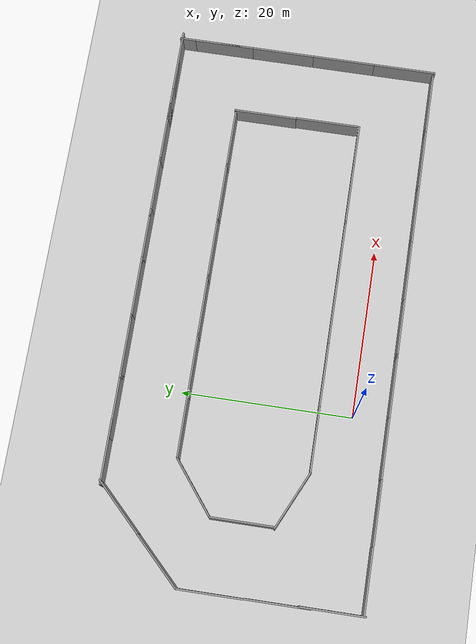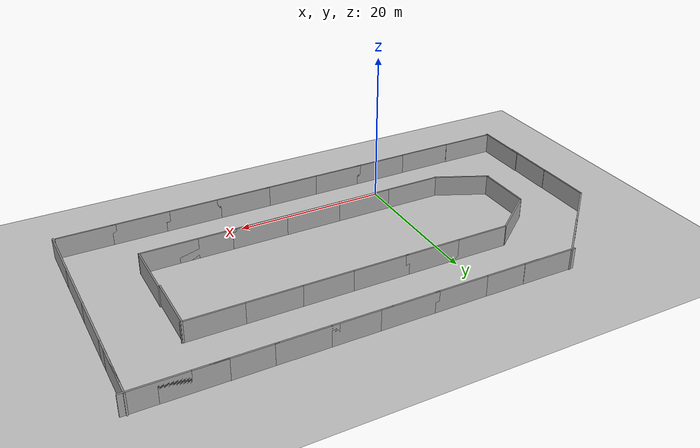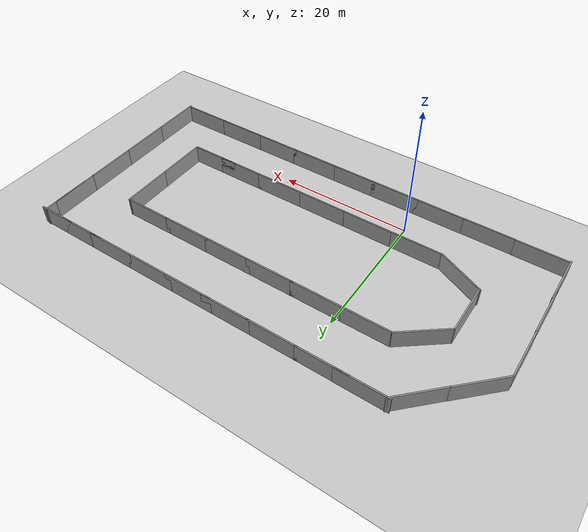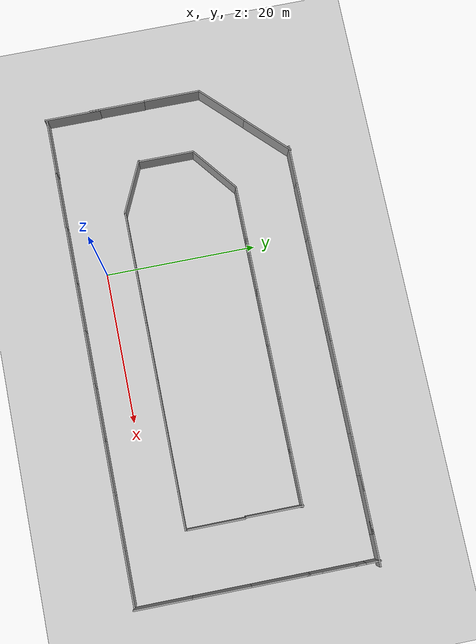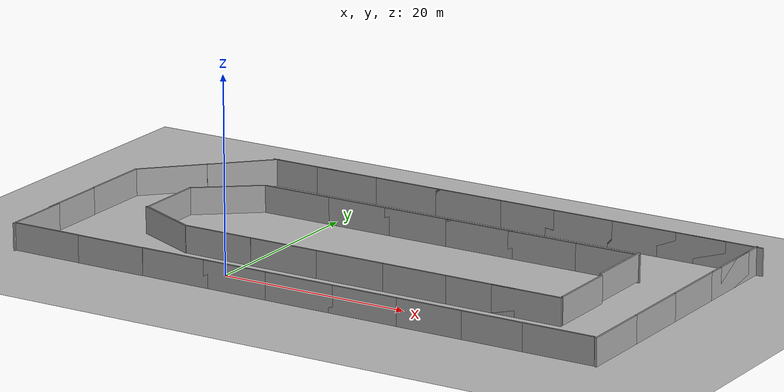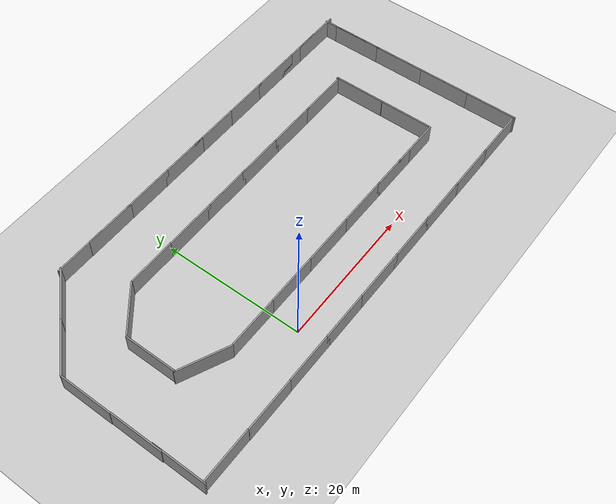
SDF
<sdf version="1.4">
 <world name="default">
  <light name="sun" type="directional">
   <pose>0 0 10 0 -0 0</pose>
   <diffuse>0.8 0.8 0.8 1</diffuse>
   <specular>0.2 0.2 0.2 1</specular>
   <attenuation>
    <range>1000</range>
    <constant>0.9</constant>
    <linear>0.01</linear>
    <quadratic>0.001</quadratic>
   </attenuation>
   <direction>-0.5 0.1 -0.9</direction>
  </light>
  <model name="ground_plane">
   <static>1</static>
   <link name="link">
    <collision name="collision">
     <geometry><plane><normal>0 0 1</normal><size>100 100</size></plane></geometry>
     <surface><friction><ode><mu>100</mu><mu2>50</mu2></ode></friction></surface>
    </collision>
    <visual name="visual">
     <cast_shadows>0</cast_shadows>
     <geometry><plane><normal>0 0 1</normal><size>100 100</size></plane></geometry>
     <material>
      <script><uri>file://media/materials/scripts/gazebo.material</uri><name>Gazebo/Grey</name></script>
     </material>
    </visual>
    <velocity_decay><linear>0</linear><angular>0</angular></velocity_decay>
   </link>
  </model>
  <physics type="ode">
   <max_step_size>0.001</max_step_size>
   <real_time_factor>1</real_time_factor>
   <real_time_update_rate>1000</real_time_update_rate>
   <gravity>0 0 -9.8</gravity>
  </physics>
  <scene><ambient>0.4 0.4 0.4 1</ambient><background>0.7 0.7 0.7 1</background><shadows>1</shadows></scene>
  <spherical_coordinates>
   <surface_model>EARTH_WGS84</surface_model>
   <latitude_deg>0</latitude_deg>
   <longitude_deg>0</longitude_deg>
   <elevation>0</elevation>
   <heading_deg>0</heading_deg>
  </spherical_coordinates>
  <model name="grey_wall_12">
   <static>1</static>
   <link name="link">
    <pose>0 0 1.4 0 -0 0</pose>
    <collision name="collision"><geometry><box><size>7.5 0.2 2.8</size></box></geometry></collision>
    <visual name="visual">
     <cast_shadows>0</cast_shadows>
     <geometry><box><size>7.5 0.2 2.8</size></box></geometry>
     <material>
      <script>
       <uri>model://grey_wall/materials/scripts</uri>
       <uri>model://grey_wall/materials/textures</uri>
       <name>vrc/grey_wall</name>
      </script>
     </material>
    </visual>
    <velocity_decay><linear>0</linear><angular>0</angular></velocity_decay>
   </link>
   <pose>4.07472 3.99162 0 0 -0 0</pose>
  </model>
  <model name="grey_wall_14">
   <static>1</static>
   <link name="link">
    <pose>0 0 1.4 0 -0 0</pose>
    <collision name="collision"><geometry><box><size>7.5 0.2 2.8</size></box></geometry></collision>
    <visual name="visual">
     <cast_shadows>0</cast_shadows>
     <geometry><box><size>7.5 0.2 2.8</size></box></geometry>
     <material>
      <script>
       <uri>model://grey_wall/materials/scripts</uri>
       <uri>model://grey_wall/materials/textures</uri>
       <name>vrc/grey_wall</name>
      </script>
     </material>
    </visual>
    <velocity_decay><linear>0</linear><angular>0</angular></velocity_decay>
   </link>
   <pose>11.5445 4 0 0 -0 0</pose>
  </model>
  <model name="grey_wall_15">
   <static>1</static>
   <link name="link">
    <pose>0 0 1.4 0 -0 0</pose>
    <collision name="collision"><geometry><box><size>7.5 0.2 2.8</size></box></geometry></collision>
    <visual name="visual">
     <cast_shadows>0</cast_shadows>
     <geometry><box><size>7.5 0.2 2.8</size></box></geometry>
     <material>
      <script>
       <uri>model://grey_wall/materials/scripts</uri>
       <uri>model://grey_wall/materials/textures</uri>
       <name>vrc/grey_wall</name>
      </script>
     </material>
    </visual>
    <velocity_decay><linear>0</linear><angular>0</angular></velocity_decay>
   </link>
   <pose>4 -4 0 0 -0 0</pose>
  </model>
  <model name="grey_wall_16">
   <static>1</static>
   <link name="link">
    <pose>0 0 1.4 0 -0 0</pose>
    <collision name="collision"><geometry><box><size>7.5 0.2 2.8</size></box></geometry></collision>
    <visual name="visual">
     <cast_shadows>0</cast_shadows>
     <geometry><box><size>7.5 0.2 2.8</size></box></geometry>
     <material>
      <script>
       <uri>model://grey_wall/materials/scripts</uri>
       <uri>model://grey_wall/materials/textures</uri>
       <name>vrc/grey_wall</name>
      </script>
     </material>
    </visual>
    <velocity_decay><linear>0</linear><angular>0</angular></velocity_decay>
   </link>
   <pose>11 -4 0 0 -0 0</pose>
  </model>
  <model name="grey_wall_17">
   <static>1</static>
   <link name="link">
    <pose>0 0 1.4 0 -0 0</pose>
    <collision name="collision"><geometry><box><size>7.5 0.2 2.8</size></box></geometry></collision>
    <visual name="visual">
     <cast_shadows>0</cast_shadows>
     <geometry><box><size>7.5 0.2 2.8</size></box></geometry>
     <material>
      <script>
       <uri>model://grey_wall/materials/scripts</uri>
       <uri>model://grey_wall/materials/textures</uri>
       <name>vrc/grey_wall</name>
      </script>
     </material>
    </visual>
    <velocity_decay><linear>0</linear><angular>0</angular></velocity_decay>
   </link>
   <pose>18 -4 0 0 -0 0</pose>
  </model>
  <model name="grey_wall_18">
   <static>1</static>
   <link name="link">
    <pose>0 0 1.4 0 -0 0</pose>
    <collision name="collision"><geometry><box><size>7.5 0.2 2.8</size></box></geometry></collision>
    <visual name="visual">
     <cast_shadows>0</cast_shadows>
     <geometry><box><size>7.5 0.2 2.8</size></box></geometry>
     <material>
      <script>
       <uri>model://grey_wall/materials/scripts</uri>
       <uri>model://grey_wall/materials/textures</uri>
       <name>vrc/grey_wall</name>
      </script>
     </material>
    </visual>
    <velocity_decay><linear>0</linear><angular>0</angular></velocity_decay>
   </link>
   <pose>19 4 0 0 -0 0</pose>
  </model>
  <model name="grey_wall_19">
   <static>1</static>
   <link name="link">
    <pose>0 0 1.4 0 -0 0</pose>
    <collision name="collision"><geometry><box><size>7.5 0.2 2.8</size></box></geometry></collision>
    <visual name="visual">
     <cast_shadows>0</cast_shadows>
     <geometry><box><size>7.5 0.2 2.8</size></box></geometry>
     <material>
      <script>
       <uri>model://grey_wall/materials/scripts</uri>
       <uri>model://grey_wall/materials/textures</uri>
       <name>vrc/grey_wall</name>
      </script>
     </material>
    </visual>
    <velocity_decay><linear>0</linear><angular>0</angular></velocity_decay>
   </link>
   <pose>25 -4 0 0 -0 0</pose>
  </model>
  <model name="grey_wall_20">
   <static>1</static>
   <link name="link">
    <pose>0 0 1.4 0 -0 0</pose>
    <collision name="collision"><geometry><box><size>7.5 0.2 2.8</size></box></geometry></collision>
    <visual name="visual">
     <cast_shadows>0</cast_shadows>
     <geometry><box><size>7.5 0.2 2.8</size></box></geometry>
     <material>
      <script>
       <uri>model://grey_wall/materials/scripts</uri>
       <uri>model://grey_wall/materials/textures</uri>
       <name>vrc/grey_wall</name>
      </script>
     </material>
    </visual>
    <velocity_decay><linear>0</linear><angular>0</angular></velocity_decay>
   </link>
   <pose>32 -4 0 0 -0 0</pose>
  </model>
  <model name="grey_wall_21">
   <static>1</static>
   <link name="link">
    <pose>0 0 1.4 0 -0 0</pose>
    <collision name="collision"><geometry><box><size>7.5 0.2 2.8</size></box></geometry></collision>
    <visual name="visual">
     <cast_shadows>0</cast_shadows>
     <geometry><box><size>7.5 0.2 2.8</size></box></geometry>
     <material>
      <script>
       <uri>model://grey_wall/materials/scripts</uri>
       <uri>model://grey_wall/materials/textures</uri>
       <name>vrc/grey_wall</name>
      </script>
     </material>
    </visual>
    <velocity_decay><linear>0</linear><angular>0</angular></velocity_decay>
   </link>
   <pose>39 -4 0 0 -0 0</pose>
  </model>
  <model name="grey_wall_22">
   <static>1</static>
   <link name="link">
    <pose>0 0 1.4 0 -0 0</pose>
    <collision name="collision"><geometry><box><size>7.5 0.2 2.8</size></box></geometry></collision>
    <visual name="visual">
     <cast_shadows>0</cast_shadows>
     <geometry><box><size>7.5 0.2 2.8</size></box></geometry>
     <material>
      <script>
       <uri>model://grey_wall/materials/scripts</uri>
       <uri>model://grey_wall/materials/textures</uri>
       <name>vrc/grey_wall</name>
      </script>
     </material>
    </visual>
    <velocity_decay><linear>0</linear><angular>0</angular></velocity_decay>
   </link>
   <pose>43 -0.492868 0 0 -0 1.5708</pose>
  </model>
  <model name="grey_wall_23">
   <static>1</static>
   <link name="link">
    <pose>0 0 1.4 0 -0 0</pose>
    <collision name="collision"><geometry><box><size>7.5 0.2 2.8</size></box></geometry></collision>
    <visual name="visual">
     <cast_shadows>0</cast_shadows>
     <geometry><box><size>7.5 0.2 2.8</size></box></geometry>
     <material>
      <script>
       <uri>model://grey_wall/materials/scripts</uri>
       <uri>model://grey_wall/materials/textures</uri>
       <name>vrc/grey_wall</name>
      </script>
     </material>
    </visual>
    <velocity_decay><linear>0</linear><angular>0</angular></velocity_decay>
   </link>
   <pose>26 4 0 0 -0 0</pose>
  </model>
  <model name="grey_wall_24">
   <static>1</static>
   <link name="link">
    <pose>0 0 1.4 0 -0 0</pose>
    <collision name="collision"><geometry><box><size>7.5 0.2 2.8</size></box></geometry></collision>
    <visual name="visual">
     <cast_shadows>0</cast_shadows>
     <geometry><box><size>7.5 0.2 2.8</size></box></geometry>
     <material>
      <script>
       <uri>model://grey_wall/materials/scripts</uri>
       <uri>model://grey_wall/materials/textures</uri>
       <name>vrc/grey_wall</name>
      </script>
     </material>
    </visual>
    <velocity_decay><linear>0</linear><angular>0</angular></velocity_decay>
   </link>
   <pose>31 4 0 0 -0 0</pose>
  </model>
  <model name="grey_wall_25">
   <static>1</static>
   <link name="link">
    <pose>0 0 1.4 0 -0 0</pose>
    <collision name="collision"><geometry><box><size>7.5 0.2 2.8</size></box></geometry></collision>
    <visual name="visual">
     <cast_shadows>0</cast_shadows>
     <geometry><box><size>7.5 0.2 2.8</size></box></geometry>
     <material>
      <script>
       <uri>model://grey_wall/materials/scripts</uri>
       <uri>model://grey_wall/materials/textures</uri>
       <name>vrc/grey_wall</name>
      </script>
     </material>
    </visual>
    <velocity_decay><linear>0</linear><angular>0</angular></velocity_decay>
   </link>
   <pose>43 7 0 0 -0 1.5708</pose>
  </model>
  <model name="grey_wall_26">
   <static>1</static>
   <link name="link">
    <pose>0 0 1.4 0 -0 0</pose>
    <collision name="collision"><geometry><box><size>7.5 0.2 2.8</size></box></geometry></collision>
    <visual name="visual">
     <cast_shadows>0</cast_shadows>
     <geometry><box><size>7.5 0.2 2.8</size></box></geometry>
     <material>
      <script>
       <uri>model://grey_wall/materials/scripts</uri>
       <uri>model://grey_wall/materials/textures</uri>
       <name>vrc/grey_wall</name>
      </script>
     </material>
    </visual>
    <velocity_decay><linear>0</linear><angular>0</angular></velocity_decay>
   </link>
   <pose>34.5478 15.4321 0.15855 0 -0 1.5708</pose>
  </model>
  <model name="grey_wall_27">
   <static>1</static>
   <link name="link">
    <pose>0 0 1.4 0 -0 0</pose>
    <collision name="collision"><geometry><box><size>7.5 0.2 2.8</size></box></geometry></collision>
    <visual name="visual">
     <cast_shadows>0</cast_shadows>
     <geometry><box><size>7.5 0.2 2.8</size></box></geometry>
     <material>
      <script>
       <uri>model://grey_wall/materials/scripts</uri>
       <uri>model://grey_wall/materials/textures</uri>
       <name>vrc/grey_wall</name>
      </script>
     </material>
    </visual>
    <velocity_decay><linear>0</linear><angular>0</angular></velocity_decay>
   </link>
   <pose>43 14.4616 0 0 -0 1.5708</pose>
  </model>
  <model name="grey_wall_28">
   <static>1</static>
   <link name="link">
    <pose>0 0 1.4 0 -0 0</pose>
    <collision name="collision"><geometry><box><size>7.5 0.2 2.8</size></box></geometry></collision>
    <visual name="visual">
     <cast_shadows>0</cast_shadows>
     <geometry><box><size>7.5 0.2 2.8</size></box></geometry>
     <material>
      <script>
       <uri>model://grey_wall/materials/scripts</uri>
       <uri>model://grey_wall/materials/textures</uri>
       <name>vrc/grey_wall</name>
      </script>
     </material>
    </visual>
    <velocity_decay><linear>0</linear><angular>0</angular></velocity_decay>
   </link>
   <pose>34.6728 7.95262 0.0202 0 -0 1.5708</pose>
  </model>
  <model name="grey_wall_30">
   <static>1</static>
   <link name="link">
    <pose>0 0 1.4 0 -0 0</pose>
    <collision name="collision"><geometry><box><size>7.5 0.2 2.8</size></box></geometry></collision>
    <visual name="visual">
     <cast_shadows>0</cast_shadows>
     <geometry><box><size>7.5 0.2 2.8</size></box></geometry>
     <material>
      <script>
       <uri>model://grey_wall/materials/scripts</uri>
       <uri>model://grey_wall/materials/textures</uri>
       <name>vrc/grey_wall</name>
      </script>
     </material>
    </visual>
    <velocity_decay><linear>0</linear><angular>0</angular></velocity_decay>
   </link>
   <pose>43 21.5815 0 0 -0 1.5708</pose>
  </model>
  <model name="grey_wall_31">
   <static>1</static>
   <link name="link">
    <pose>0 0 1.4 0 -0 0</pose>
    <collision name="collision"><geometry><box><size>7.5 0.2 2.8</size></box></geometry></collision>
    <visual name="visual">
     <cast_shadows>0</cast_shadows>
     <geometry><box><size>7.5 0.2 2.8</size></box></geometry>
     <material>
      <script>
       <uri>model://grey_wall/materials/scripts</uri>
       <uri>model://grey_wall/materials/textures</uri>
       <name>vrc/grey_wall</name>
      </script>
     </material>
    </visual>
    <velocity_decay><linear>0</linear><angular>0</angular></velocity_decay>
   </link>
   <pose>31 19 0 0 -0 0</pose>
  </model>
  <model name="grey_wall_32">
   <static>1</static>
   <link name="link">
    <pose>0 0 1.4 0 -0 0</pose>
    <collision name="collision"><geometry><box><size>7.5 0.2 2.8</size></box></geometry></collision>
    <visual name="visual">
     <cast_shadows>0</cast_shadows>
     <geometry><box><size>7.5 0.2 2.8</size></box></geometry>
     <material>
      <script>
       <uri>model://grey_wall/materials/scripts</uri>
       <uri>model://grey_wall/materials/textures</uri>
       <name>vrc/grey_wall</name>
      </script>
     </material>
    </visual>
    <velocity_decay><linear>0</linear><angular>0</angular></velocity_decay>
   </link>
   <pose>24 19 0 0 -0 0</pose>
  </model>
  <model name="grey_wall_33">
   <static>1</static>
   <link name="link">
    <pose>0 0 1.4 0 -0 0</pose>
    <collision name="collision"><geometry><box><size>7.5 0.2 2.8</size></box></geometry></collision>
    <visual name="visual">
     <cast_shadows>0</cast_shadows>
     <geometry><box><size>7.5 0.2 2.8</size></box></geometry>
     <material>
      <script>
       <uri>model://grey_wall/materials/scripts</uri>
       <uri>model://grey_wall/materials/textures</uri>
       <name>vrc/grey_wall</name>
      </script>
     </material>
    </visual>
    <velocity_decay><linear>0</linear><angular>0</angular></velocity_decay>
   </link>
   <pose>17 19 0 0 -0 0</pose>
  </model>
  <model name="grey_wall_34">
   <static>1</static>
   <link name="link">
    <pose>0 0 1.4 0 -0 0</pose>
    <collision name="collision"><geometry><box><size>7.5 0.2 2.8</size></box></geometry></collision>
    <visual name="visual">
     <cast_shadows>0</cast_shadows>
     <geometry><box><size>7.5 0.2 2.8</size></box></geometry>
     <material>
      <script>
       <uri>model://grey_wall/materials/scripts</uri>
       <uri>model://grey_wall/materials/textures</uri>
       <name>vrc/grey_wall</name>
      </script>
     </material>
    </visual>
    <velocity_decay><linear>0</linear><angular>0</angular></velocity_decay>
   </link>
   <pose>10 19 0 0 -0 0</pose>
  </model>
  <model name="grey_wall_36">
   <static>1</static>
   <link name="link">
    <pose>0 0 1.4 0 -0 0</pose>
    <collision name="collision"><geometry><box><size>7.5 0.2 2.8</size></box></geometry></collision>
    <visual name="visual">
     <cast_shadows>0</cast_shadows>
     <geometry><box><size>7.5 0.2 2.8</size></box></geometry>
     <material>
      <script>
       <uri>model://grey_wall/materials/scripts</uri>
       <uri>model://grey_wall/materials/textures</uri>
       <name>vrc/grey_wall</name>
      </script>
     </material>
    </visual>
    <velocity_decay><linear>0</linear><angular>0</angular></velocity_decay>
   </link>
   <pose>3 19 0 0 -0 0</pose>
  </model>
  <model name="grey_wall_39">
   <static>1</static>
   <link name="link">
    <pose>0 0 1.4 0 -0 0</pose>
    <collision name="collision"><geometry><box><size>7.5 0.2 2.8</size></box></geometry></collision>
    <visual name="visual">
     <cast_shadows>0</cast_shadows>
     <geometry><box><size>7.5 0.2 2.8</size></box></geometry>
     <material>
      <script>
       <uri>model://grey_wall/materials/scripts</uri>
       <uri>model://grey_wall/materials/textures</uri>
       <name>vrc/grey_wall</name>
      </script>
     </material>
    </visual>
    <velocity_decay><linear>0</linear><angular>0</angular></velocity_decay>
   </link>
   <pose>-3 27 0 0 -0 0</pose>
  </model>
  <model name="grey_wall_40">
   <static>1</static>
   <link name="link">
    <pose>0 0 1.4 0 -0 0</pose>
    <collision name="collision"><geometry><box><size>7.5 0.2 2.8</size></box></geometry></collision>
    <visual name="visual">
     <cast_shadows>0</cast_shadows>
     <geometry><box><size>7.5 0.2 2.8</size></box></geometry>
     <material>
      <script>
       <uri>model://grey_wall/materials/scripts</uri>
       <uri>model://grey_wall/materials/textures</uri>
       <name>vrc/grey_wall</name>
      </script>
     </material>
    </visual>
    <velocity_decay><linear>0</linear><angular>0</angular></velocity_decay>
   </link>
   <pose>4 27 0 0 -0 0</pose>
  </model>
  <model name="grey_wall_41">
   <static>1</static>
   <link name="link">
    <pose>0 0 1.4 0 -0 0</pose>
    <collision name="collision"><geometry><box><size>7.5 0.2 2.8</size></box></geometry></collision>
    <visual name="visual">
     <cast_shadows>0</cast_shadows>
     <geometry><box><size>7.5 0.2 2.8</size></box></geometry>
     <material>
      <script>
       <uri>model://grey_wall/materials/scripts</uri>
       <uri>model://grey_wall/materials/textures</uri>
       <name>vrc/grey_wall</name>
      </script>
     </material>
    </visual>
    <velocity_decay><linear>0</linear><angular>0</angular></velocity_decay>
   </link>
   <pose>11 27 0 0 -0 0</pose>
  </model>
  <model name="grey_wall_42">
   <static>1</static>
   <link name="link">
    <pose>0 0 1.4 0 -0 0</pose>
    <collision name="collision"><geometry><box><size>7.5 0.2 2.8</size></box></geometry></collision>
    <visual name="visual">
     <cast_shadows>0</cast_shadows>
     <geometry><box><size>7.5 0.2 2.8</size></box></geometry>
     <material>
      <script>
       <uri>model://grey_wall/materials/scripts</uri>
       <uri>model://grey_wall/materials/textures</uri>
       <name>vrc/grey_wall</name>
      </script>
     </material>
    </visual>
    <velocity_decay><linear>0</linear><angular>0</angular></velocity_decay>
   </link>
   <pose>17 27 0 0 -0 0</pose>
  </model>
  <model name="grey_wall_43">
   <static>1</static>
   <link name="link">
    <pose>0 0 1.4 0 -0 0</pose>
    <collision name="collision"><geometry><box><size>7.5 0.2 2.8</size></box></geometry></collision>
    <visual name="visual">
     <cast_shadows>0</cast_shadows>
     <geometry><box><size>7.5 0.2 2.8</size></box></geometry>
     <material>
      <script>
       <uri>model://grey_wall/materials/scripts</uri>
       <uri>model://grey_wall/materials/textures</uri>
       <name>vrc/grey_wall</name>
      </script>
     </material>
    </visual>
    <velocity_decay><linear>0</linear><angular>0</angular></velocity_decay>
   </link>
   <pose>23.5405 27 0 0 -0 0</pose>
  </model>
  <model name="grey_wall_44">
   <static>1</static>
   <link name="link">
    <pose>0 0 1.4 0 -0 0</pose>
    <collision name="collision"><geometry><box><size>7.5 0.2 2.8</size></box></geometry></collision>
    <visual name="visual">
     <cast_shadows>0</cast_shadows>
     <geometry><box><size>7.5 0.2 2.8</size></box></geometry>
     <material>
      <script>
       <uri>model://grey_wall/materials/scripts</uri>
       <uri>model://grey_wall/materials/textures</uri>
       <name>vrc/grey_wall</name>
      </script>
     </material>
    </visual>
    <velocity_decay><linear>0</linear><angular>0</angular></velocity_decay>
   </link>
   <pose>30.5521 27 0 0 -0 0</pose>
  </model>
  <model name="grey_wall_45">
   <static>1</static>
   <link name="link">
    <pose>0 0 1.4 0 -0 0</pose>
    <collision name="collision"><geometry><box><size>7.5 0.2 2.8</size></box></geometry></collision>
    <visual name="visual">
     <cast_shadows>0</cast_shadows>
     <geometry><box><size>7.5 0.2 2.8</size></box></geometry>
     <material>
      <script>
       <uri>model://grey_wall/materials/scripts</uri>
       <uri>model://grey_wall/materials/textures</uri>
       <name>vrc/grey_wall</name>
      </script>
     </material>
    </visual>
    <velocity_decay><linear>0</linear><angular>0</angular></velocity_decay>
   </link>
   <pose>36 27 0 0 -0 0</pose>
  </model>
  <model name="grey_wall_46">
   <static>1</static>
   <link name="link">
    <pose>0 0 1.4 0 -0 0</pose>
    <collision name="collision"><geometry><box><size>7.5 0.2 2.8</size></box></geometry></collision>
    <visual name="visual">
     <cast_shadows>0</cast_shadows>
     <geometry><box><size>7.5 0.2 2.8</size></box></geometry>
     <material>
      <script>
       <uri>model://grey_wall/materials/scripts</uri>
       <uri>model://grey_wall/materials/textures</uri>
       <name>vrc/grey_wall</name>
      </script>
     </material>
    </visual>
    <velocity_decay><linear>0</linear><angular>0</angular></velocity_decay>
   </link>
   <pose>40 27 0 0 -0 0</pose>
  </model>
  <model name="grey_wall_47">
   <static>1</static>
   <link name="link">
    <pose>0 0 1.4 0 -0 0</pose>
    <collision name="collision"><geometry><box><size>7.5 0.2 2.8</size></box></geometry></collision>
    <visual name="visual">
     <cast_shadows>0</cast_shadows>
     <geometry><box><size>7.5 0.2 2.8</size></box></geometry>
     <material>
      <script>
       <uri>model://grey_wall/materials/scripts</uri>
       <uri>model://grey_wall/materials/textures</uri>
       <name>vrc/grey_wall</name>
      </script>
     </material>
    </visual>
    <velocity_decay><linear>0</linear><angular>0</angular></velocity_decay>
   </link>
   <pose>43 23.4999 0 0 -0 1.5708</pose>
  </model>
  <model name="grey_wall">
   <static>1</static>
   <link name="link">
    <pose>0 0 1.4 0 -0 0</pose>
    <collision name="collision"><geometry><box><size>7.5 0.2 2.8</size></box></geometry></collision>
    <visual name="visual">
     <cast_shadows>0</cast_shadows>
     <geometry><box><size>7.5 0.2 2.8</size></box></geometry>
     <material>
      <script>
       <uri>model://grey_wall/materials/scripts</uri>
       <uri>model://grey_wall/materials/textures</uri>
       <name>vrc/grey_wall</name>
      </script>
     </material>
    </visual>
    <velocity_decay><linear>0</linear><angular>0</angular></velocity_decay>
   </link>
   <pose>-3.39912 3.9775 0 0 -0 0</pose>
  </model>
  <model name="grey_wall_0">
   <static>1</static>
   <link name="link">
    <pose>0 0 1.4 0 -0 0</pose>
    <collision name="collision"><geometry><box><size>7.5 0.2 2.8</size></box></geometry></collision>
    <visual name="visual">
     <cast_shadows>0</cast_shadows>
     <geometry><box><size>7.5 0.2 2.8</size></box></geometry>
     <material>
      <script>
       <uri>model://grey_wall/materials/scripts</uri>
       <uri>model://grey_wall/materials/textures</uri>
       <name>vrc/grey_wall</name>
      </script>
     </material>
    </visual>
    <velocity_decay><linear>0</linear><angular>0</angular></velocity_decay>
   </link>
   <pose>-4 19 0 0 -0 0</pose>
  </model>
  <model name="grey_wall_1">
   <static>1</static>
   <link name="link">
    <pose>0 0 1.4 0 -0 0</pose>
    <collision name="collision"><geometry><box><size>7.5 0.2 2.8</size></box></geometry></collision>
    <visual name="visual">
     <cast_shadows>0</cast_shadows>
     <geometry><box><size>7.5 0.2 2.8</size></box></geometry>
     <material>
      <script>
       <uri>model://grey_wall/materials/scripts</uri>
       <uri>model://grey_wall/materials/textures</uri>
       <name>vrc/grey_wall</name>
      </script>
     </material>
    </visual>
    <velocity_decay><linear>0</linear><angular>0</angular></velocity_decay>
   </link>
   <pose>-10.7404 16.7141 0 0 -0 0.664552</pose>
  </model>
  <model name="grey_wall_2">
   <static>1</static>
   <link name="link">
    <pose>0 0 1.4 0 -0 0</pose>
    <collision name="collision"><geometry><box><size>7.5 0.2 2.8</size></box></geometry></collision>
    <visual name="visual">
     <cast_shadows>0</cast_shadows>
     <geometry><box><size>7.5 0.2 2.8</size></box></geometry>
     <material>
      <script>
       <uri>model://grey_wall/materials/scripts</uri>
       <uri>model://grey_wall/materials/textures</uri>
       <name>vrc/grey_wall</name>
      </script>
     </material>
    </visual>
    <velocity_decay><linear>0</linear><angular>0</angular></velocity_decay>
   </link>
   <pose>-10.5355 5.48944 0 0 0 -0.433589</pose>
  </model>
  <model name="grey_wall_3">
   <static>1</static>
   <link name="link">
    <pose>0 0 1.4 0 -0 0</pose>
    <collision name="collision"><geometry><box><size>7.5 0.2 2.8</size></box></geometry></collision>
    <visual name="visual">
     <cast_shadows>0</cast_shadows>
     <geometry><box><size>7.5 0.2 2.8</size></box></geometry>
     <material>
      <script>
       <uri>model://grey_wall/materials/scripts</uri>
       <uri>model://grey_wall/materials/textures</uri>
       <name>vrc/grey_wall</name>
      </script>
     </material>
    </visual>
    <velocity_decay><linear>0</linear><angular>0</angular></velocity_decay>
   </link>
   <pose>-13.7312 10.6753 0 0 -0 1.5708</pose>
  </model>
  <model name="grey_wall_4">
   <static>1</static>
   <link name="link">
    <pose>0 0 1.4 0 -0 0</pose>
    <collision name="collision"><geometry><box><size>7.5 0.2 2.8</size></box></geometry></collision>
    <visual name="visual">
     <cast_shadows>0</cast_shadows>
     <geometry><box><size>7.5 0.2 2.8</size></box></geometry>
     <material>
      <script>
       <uri>model://grey_wall/materials/scripts</uri>
       <uri>model://grey_wall/materials/textures</uri>
       <name>vrc/grey_wall</name>
      </script>
     </material>
    </visual>
    <velocity_decay><linear>0</linear><angular>0</angular></velocity_decay>
   </link>
   <pose>-14.0909 24.5631 0 0 -0 0.785398</pose>
  </model>
  <model name="grey_wall_5">
   <static>1</static>
   <link name="link">
    <pose>0 0 1.4 0 -0 0</pose>
    <collision name="collision"><geometry><box><size>7.5 0.2 2.8</size></box></geometry></collision>
    <visual name="visual">
     <cast_shadows>0</cast_shadows>
     <geometry><box><size>7.5 0.2 2.8</size></box></geometry>
     <material>
      <script>
       <uri>model://grey_wall/materials/scripts</uri>
       <uri>model://grey_wall/materials/textures</uri>
       <name>vrc/grey_wall</name>
      </script>
     </material>
    </visual>
    <velocity_decay><linear>0</linear><angular>0</angular></velocity_decay>
   </link>
   <pose>-3 -4 0 0 -0 0</pose>
  </model>
  <model name="grey_wall_7">
   <static>1</static>
   <link name="link">
    <pose>0 0 1.4 0 -0 0</pose>
    <collision name="collision"><geometry><box><size>7.5 0.2 2.8</size></box></geometry></collision>
    <visual name="visual">
     <cast_shadows>0</cast_shadows>
     <geometry><box><size>7.5 0.2 2.8</size></box></geometry>
     <material>
      <script>
       <uri>model://grey_wall/materials/scripts</uri>
       <uri>model://grey_wall/materials/textures</uri>
       <name>vrc/grey_wall</name>
      </script>
     </material>
    </visual>
    <velocity_decay><linear>0</linear><angular>0</angular></velocity_decay>
   </link>
   <pose>-8.3043 27.0305 0 0 -0 0</pose>
  </model>
  <model name="grey_wall_8">
   <static>1</static>
   <link name="link">
    <pose>0 0 1.4 0 -0 0</pose>
    <collision name="collision"><geometry><box><size>7.5 0.2 2.8</size></box></geometry></collision>
    <visual name="visual">
     <cast_shadows>0</cast_shadows>
     <geometry><box><size>7.5 0.2 2.8</size></box></geometry>
     <material>
      <script>
       <uri>model://grey_wall/materials/scripts</uri>
       <uri>model://grey_wall/materials/textures</uri>
       <name>vrc/grey_wall</name>
      </script>
     </material>
    </visual>
    <velocity_decay><linear>0</linear><angular>0</angular></velocity_decay>
   </link>
   <pose>-19.2828 19.4039 0 0 -0 0.785398</pose>
  </model>
  <model name="grey_wall_9">
   <static>1</static>
   <link name="link">
    <pose>0 0 1.4 0 -0 0</pose>
    <collision name="collision"><geometry><box><size>7.5 0.2 2.8</size></box></geometry></collision>
    <visual name="visual">
     <cast_shadows>0</cast_shadows>
     <geometry><box><size>7.5 0.2 2.8</size></box></geometry>
     <material>
      <script>
       <uri>model://grey_wall/materials/scripts</uri>
       <uri>model://grey_wall/materials/textures</uri>
       <name>vrc/grey_wall</name>
      </script>
     </material>
    </visual>
    <velocity_decay><linear>0</linear><angular>0</angular></velocity_decay>
   </link>
   <pose>-10.4941 -4.03555 0 0 -0 0</pose>
  </model>
  <model name="grey_wall_10">
   <static>1</static>
   <link name="link">
    <pose>0 0 1.4 0 -0 0</pose>
    <collision name="collision"><geometry><box><size>7.5 0.2 2.8</size></box></geometry></collision>
    <visual name="visual">
     <cast_shadows>0</cast_shadows>
     <geometry><box><size>7.5 0.2 2.8</size></box></geometry>
     <material>
      <script>
       <uri>model://grey_wall/materials/scripts</uri>
       <uri>model://grey_wall/materials/textures</uri>
       <name>vrc/grey_wall</name>
      </script>
     </material>
    </visual>
    <velocity_decay><linear>0</linear><angular>0</angular></velocity_decay>
   </link>
   <pose>-18 -4 0 0 -0 0</pose>
  </model>
  <model name="grey_wall_11">
   <static>1</static>
   <link name="link">
    <pose>0 0 1.4 0 -0 0</pose>
    <collision name="collision"><geometry><box><size>7.5 0.2 2.8</size></box></geometry></collision>
    <visual name="visual">
     <cast_shadows>0</cast_shadows>
     <geometry><box><size>7.5 0.2 2.8</size></box></geometry>
     <material>
      <script>
       <uri>model://grey_wall/materials/scripts</uri>
       <uri>model://grey_wall/materials/textures</uri>
       <name>vrc/grey_wall</name>
      </script>
     </material>
    </visual>
    <velocity_decay><linear>0</linear><angular>0</angular></velocity_decay>
   </link>
   <pose>-21.9137 13.0108 0 0 -0 1.5708</pose>
  </model>
  <model name="grey_wall_13">
   <static>1</static>
   <link name="link">
    <pose>0 0 1.4 0 -0 0</pose>
    <collision name="collision"><geometry><box><size>7.5 0.2 2.8</size></box></geometry></collision>
    <visual name="visual">
     <cast_shadows>0</cast_shadows>
     <geometry><box><size>7.5 0.2 2.8</size></box></geometry>
     <material>
      <script>
       <uri>model://grey_wall/materials/scripts</uri>
       <uri>model://grey_wall/materials/textures</uri>
       <name>vrc/grey_wall</name>
      </script>
     </material>
    </visual>
    <velocity_decay><linear>0</linear><angular>0</angular></velocity_decay>
   </link>
   <pose>-21.868 5.51652 0 0 -0 1.5708</pose>
  </model>
  <model name="grey_wall_29">
   <static>1</static>
   <link name="link">
    <pose>0 0 1.4 0 -0 0</pose>
    <collision name="collision"><geometry><box><size>7.5 0.2 2.8</size></box></geometry></collision>
    <visual name="visual">
     <cast_shadows>0</cast_shadows>
     <geometry><box><size>7.5 0.2 2.8</size></box></geometry>
     <material>
      <script>
       <uri>model://grey_wall/materials/scripts</uri>
       <uri>model://grey_wall/materials/textures</uri>
       <name>vrc/grey_wall</name>
      </script>
     </material>
    </visual>
    <velocity_decay><linear>0</linear><angular>0</angular></velocity_decay>
   </link>
   <pose>-21.7836 -0.531863 0 0 -0 1.5708</pose>
  </model>
 </world>
</sdf>
